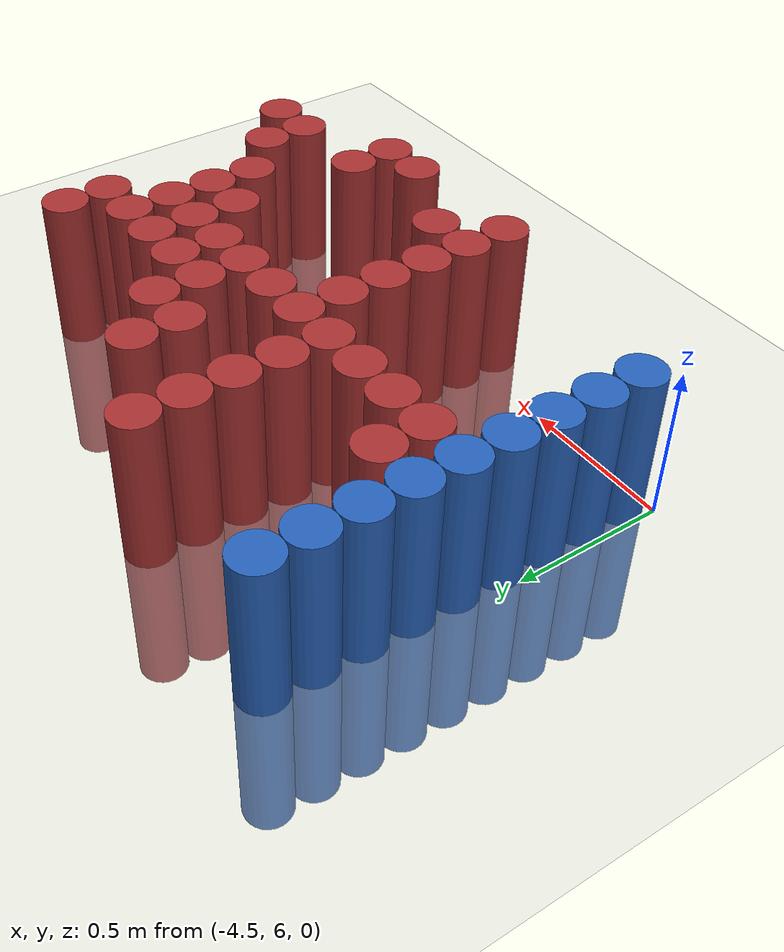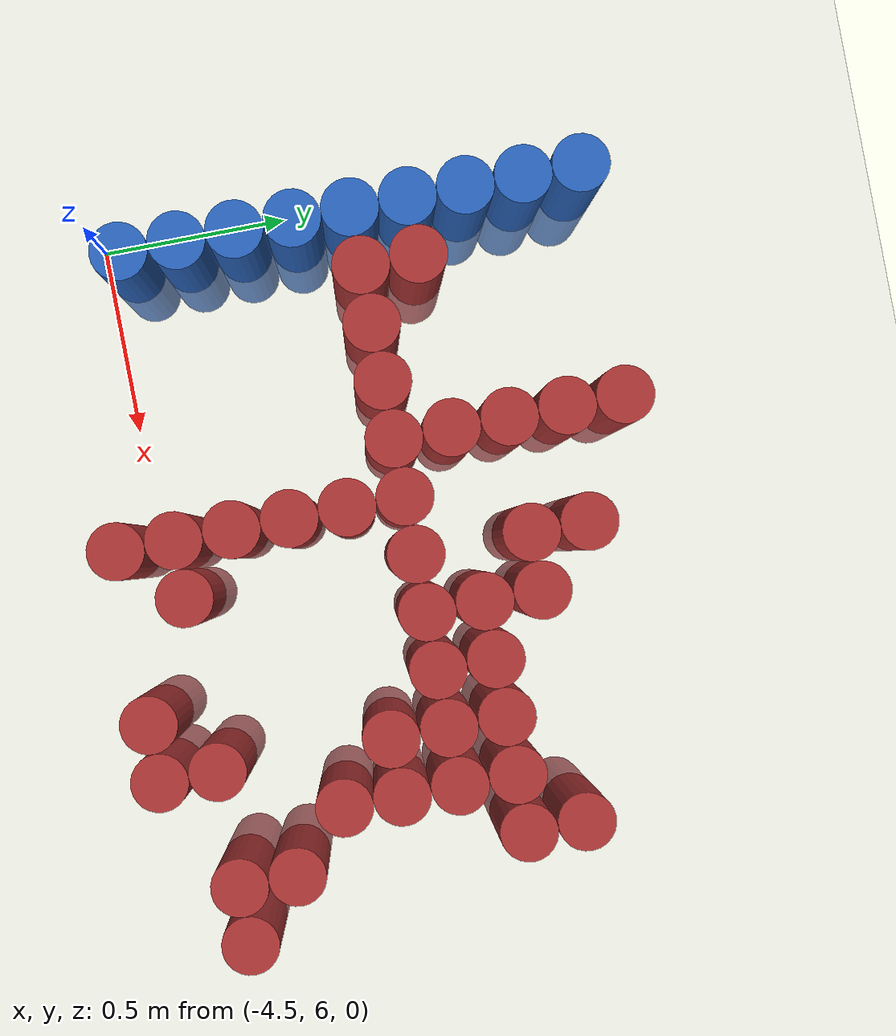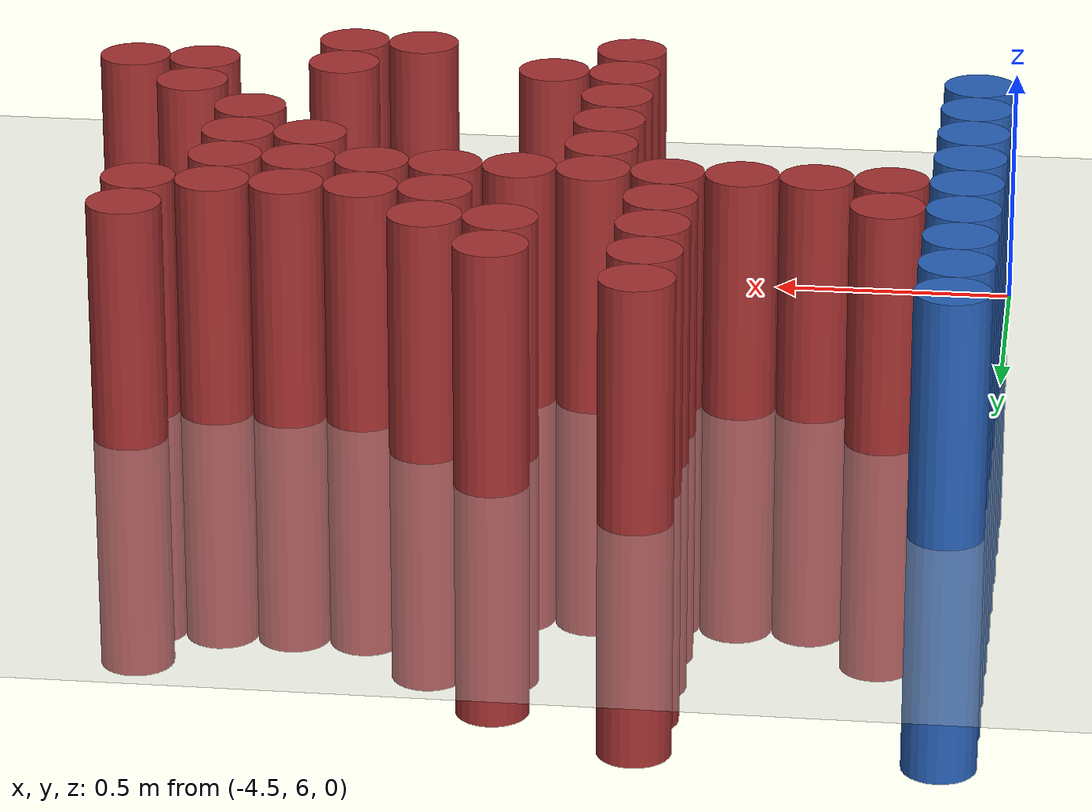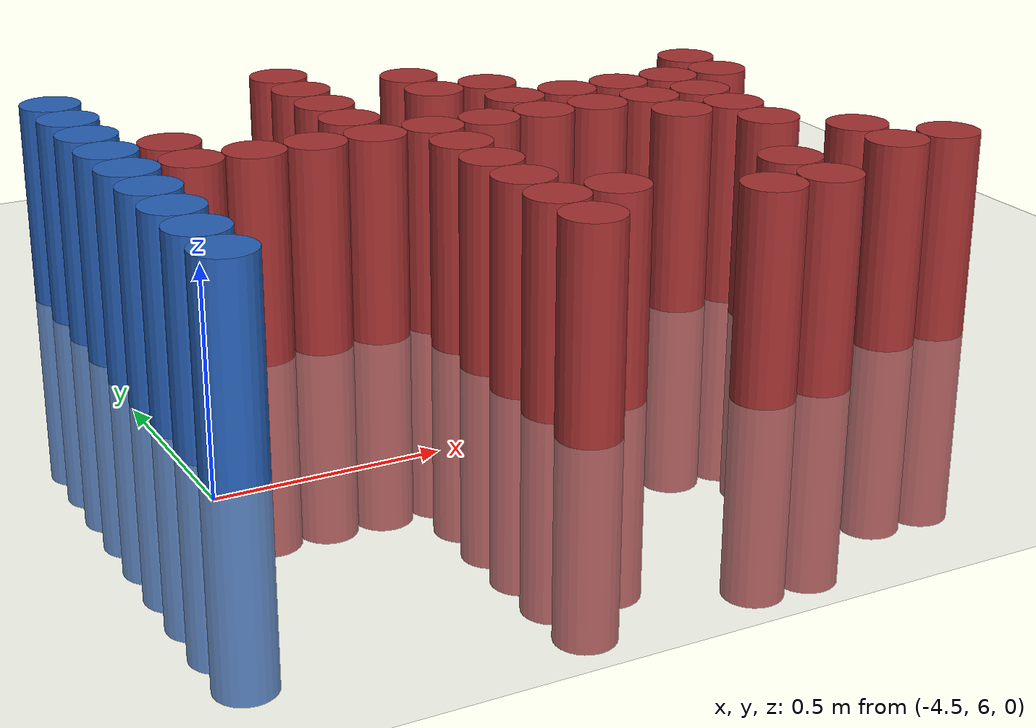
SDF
<sdf version="1.6">
 <world name="default">
  <model name="ground_plane">
   <static>1</static>
   <link name="link">
    <collision name="collision">
     <geometry><plane><normal>0 0 1</normal><size>100 100</size></plane></geometry>
     <surface><friction><ode><mu>100</mu><mu2>50</mu2></ode></friction></surface>
    </collision>
    <visual name="visual">
     <cast_shadows>0</cast_shadows>
     <geometry><plane><normal>0 0 1</normal><size>100 100</size></plane></geometry>
     <material>
      <script><uri>file://media/materials/scripts/gazebo.material</uri><name>Gazebo/Grey</name></script>
     </material>
    </visual>
   </link>
  </model>
  <model name="unit_cylinder_102">
   <static>1</static>
   <pose>-4.425000 6.075000 0.000000 0.000000 0.000000 0.000000</pose>
   <link name="link">
    <inertial>
     <mass>1</mass>
     <inertia><ixx>0.145833</ixx><ixy>0</ixy><ixz>0</ixz><iyy>0.145833</iyy><iyz>0</iyz><izz>0.125</izz></inertia>
    </inertial>
    <collision name="collision">
     <geometry><cylinder><radius>0.075000</radius><length>1</length></cylinder></geometry>
    </collision>
    <visual name="visual">
     <geometry><cylinder><radius>0.075000</radius><length>1</length></cylinder></geometry>
     <material>
      <ambient>0.152000 0.379000 0.720000 1</ambient>
      <diffuse>0.152000 0.379000 0.720000 1</diffuse>
     </material>
     <material>
      <script><name>Gazebo/Grey</name><uri>file://media/materials/scripts/gazebo.material</uri></script>
     </material>
    </visual>
   </link>
  </model>
  <model name="unit_cylinder_103">
   <static>1</static>
   <pose>-4.425000 6.225000 0.000000 0.000000 0.000000 0.000000</pose>
   <link name="link">
    <inertial>
     <mass>1</mass>
     <inertia><ixx>0.145833</ixx><ixy>0</ixy><ixz>0</ixz><iyy>0.145833</iyy><iyz>0</iyz><izz>0.125</izz></inertia>
    </inertial>
    <collision name="collision">
     <geometry><cylinder><radius>0.075000</radius><length>1</length></cylinder></geometry>
    </collision>
    <visual name="visual">
     <geometry><cylinder><radius>0.075000</radius><length>1</length></cylinder></geometry>
     <material>
      <ambient>0.152000 0.379000 0.720000 1</ambient>
      <diffuse>0.152000 0.379000 0.720000 1</diffuse>
     </material>
     <material>
      <script><name>Gazebo/Grey</name><uri>file://media/materials/scripts/gazebo.material</uri></script>
     </material>
    </visual>
   </link>
  </model>
  <model name="unit_cylinder_104">
   <static>1</static>
   <pose>-4.425000 6.375000 0.000000 0.000000 0.000000 0.000000</pose>
   <link name="link">
    <inertial>
     <mass>1</mass>
     <inertia><ixx>0.145833</ixx><ixy>0</ixy><ixz>0</ixz><iyy>0.145833</iyy><iyz>0</iyz><izz>0.125</izz></inertia>
    </inertial>
    <collision name="collision">
     <geometry><cylinder><radius>0.075000</radius><length>1</length></cylinder></geometry>
    </collision>
    <visual name="visual">
     <geometry><cylinder><radius>0.075000</radius><length>1</length></cylinder></geometry>
     <material>
      <ambient>0.152000 0.379000 0.720000 1</ambient>
      <diffuse>0.152000 0.379000 0.720000 1</diffuse>
     </material>
     <material>
      <script><name>Gazebo/Grey</name><uri>file://media/materials/scripts/gazebo.material</uri></script>
     </material>
    </visual>
   </link>
  </model>
  <model name="unit_cylinder_105">
   <static>1</static>
   <pose>-4.425000 6.525000 0.000000 0.000000 0.000000 0.000000</pose>
   <link name="link">
    <inertial>
     <mass>1</mass>
     <inertia><ixx>0.145833</ixx><ixy>0</ixy><ixz>0</ixz><iyy>0.145833</iyy><iyz>0</iyz><izz>0.125</izz></inertia>
    </inertial>
    <collision name="collision">
     <geometry><cylinder><radius>0.075000</radius><length>1</length></cylinder></geometry>
    </collision>
    <visual name="visual">
     <geometry><cylinder><radius>0.075000</radius><length>1</length></cylinder></geometry>
     <material>
      <ambient>0.152000 0.379000 0.720000 1</ambient>
      <diffuse>0.152000 0.379000 0.720000 1</diffuse>
     </material>
     <material>
      <script><name>Gazebo/Grey</name><uri>file://media/materials/scripts/gazebo.material</uri></script>
     </material>
    </visual>
   </link>
  </model>
  <model name="unit_cylinder_106">
   <static>1</static>
   <pose>-4.425000 6.675000 0.000000 0.000000 0.000000 0.000000</pose>
   <link name="link">
    <inertial>
     <mass>1</mass>
     <inertia><ixx>0.145833</ixx><ixy>0</ixy><ixz>0</ixz><iyy>0.145833</iyy><iyz>0</iyz><izz>0.125</izz></inertia>
    </inertial>
    <collision name="collision">
     <geometry><cylinder><radius>0.075000</radius><length>1</length></cylinder></geometry>
    </collision>
    <visual name="visual">
     <geometry><cylinder><radius>0.075000</radius><length>1</length></cylinder></geometry>
     <material>
      <ambient>0.152000 0.379000 0.720000 1</ambient>
      <diffuse>0.152000 0.379000 0.720000 1</diffuse>
     </material>
     <material>
      <script><name>Gazebo/Grey</name><uri>file://media/materials/scripts/gazebo.material</uri></script>
     </material>
    </visual>
   </link>
  </model>
  <model name="unit_cylinder_107">
   <static>1</static>
   <pose>-4.425000 6.825000 0.000000 0.000000 0.000000 0.000000</pose>
   <link name="link">
    <inertial>
     <mass>1</mass>
     <inertia><ixx>0.145833</ixx><ixy>0</ixy><ixz>0</ixz><iyy>0.145833</iyy><iyz>0</iyz><izz>0.125</izz></inertia>
    </inertial>
    <collision name="collision">
     <geometry><cylinder><radius>0.075000</radius><length>1</length></cylinder></geometry>
    </collision>
    <visual name="visual">
     <geometry><cylinder><radius>0.075000</radius><length>1</length></cylinder></geometry>
     <material>
      <ambient>0.152000 0.379000 0.720000 1</ambient>
      <diffuse>0.152000 0.379000 0.720000 1</diffuse>
     </material>
     <material>
      <script><name>Gazebo/Grey</name><uri>file://media/materials/scripts/gazebo.material</uri></script>
     </material>
    </visual>
   </link>
  </model>
  <model name="unit_cylinder_108">
   <static>1</static>
   <pose>-4.425000 6.975000 0.000000 0.000000 0.000000 0.000000</pose>
   <link name="link">
    <inertial>
     <mass>1</mass>
     <inertia><ixx>0.145833</ixx><ixy>0</ixy><ixz>0</ixz><iyy>0.145833</iyy><iyz>0</iyz><izz>0.125</izz></inertia>
    </inertial>
    <collision name="collision">
     <geometry><cylinder><radius>0.075000</radius><length>1</length></cylinder></geometry>
    </collision>
    <visual name="visual">
     <geometry><cylinder><radius>0.075000</radius><length>1</length></cylinder></geometry>
     <material>
      <ambient>0.152000 0.379000 0.720000 1</ambient>
      <diffuse>0.152000 0.379000 0.720000 1</diffuse>
     </material>
     <material>
      <script><name>Gazebo/Grey</name><uri>file://media/materials/scripts/gazebo.material</uri></script>
     </material>
    </visual>
   </link>
  </model>
  <model name="unit_cylinder_109">
   <static>1</static>
   <pose>-4.425000 7.125000 0.000000 0.000000 0.000000 0.000000</pose>
   <link name="link">
    <inertial>
     <mass>1</mass>
     <inertia><ixx>0.145833</ixx><ixy>0</ixy><ixz>0</ixz><iyy>0.145833</iyy><iyz>0</iyz><izz>0.125</izz></inertia>
    </inertial>
    <collision name="collision">
     <geometry><cylinder><radius>0.075000</radius><length>1</length></cylinder></geometry>
    </collision>
    <visual name="visual">
     <geometry><cylinder><radius>0.075000</radius><length>1</length></cylinder></geometry>
     <material>
      <ambient>0.152000 0.379000 0.720000 1</ambient>
      <diffuse>0.152000 0.379000 0.720000 1</diffuse>
     </material>
     <material>
      <script><name>Gazebo/Grey</name><uri>file://media/materials/scripts/gazebo.material</uri></script>
     </material>
    </visual>
   </link>
  </model>
  <model name="unit_cylinder_110">
   <static>1</static>
   <pose>-4.425000 7.275000 0.000000 0.000000 0.000000 0.000000</pose>
   <link name="link">
    <inertial>
     <mass>1</mass>
     <inertia><ixx>0.145833</ixx><ixy>0</ixy><ixz>0</ixz><iyy>0.145833</iyy><iyz>0</iyz><izz>0.125</izz></inertia>
    </inertial>
    <collision name="collision">
     <geometry><cylinder><radius>0.075000</radius><length>1</length></cylinder></geometry>
    </collision>
    <visual name="visual">
     <geometry><cylinder><radius>0.075000</radius><length>1</length></cylinder></geometry>
     <material>
      <ambient>0.152000 0.379000 0.720000 1</ambient>
      <diffuse>0.152000 0.379000 0.720000 1</diffuse>
     </material>
     <material>
      <script><name>Gazebo/Grey</name><uri>file://media/materials/scripts/gazebo.material</uri></script>
     </material>
    </visual>
   </link>
  </model>
  <model name="unit_cylinder_131">
   <static>1</static>
   <pose>-4.275000 6.675000 0.000000 0.000000 0.000000 0.000000</pose>
   <link name="link">
    <inertial>
     <mass>1</mass>
     <inertia><ixx>0.145833</ixx><ixy>0</ixy><ixz>0</ixz><iyy>0.145833</iyy><iyz>0</iyz><izz>0.125</izz></inertia>
    </inertial>
    <collision name="collision">
     <geometry><cylinder><radius>0.075000</radius><length>1</length></cylinder></geometry>
    </collision>
    <visual name="visual">
     <geometry><cylinder><radius>0.075000</radius><length>1</length></cylinder></geometry>
     <material>
      <ambient>0.648000 0.192000 0.192000 1</ambient>
      <diffuse>0.648000 0.192000 0.192000 1</diffuse>
     </material>
     <material>
      <script><name>Gazebo/Grey</name><uri>file://media/materials/scripts/gazebo.material</uri></script>
     </material>
    </visual>
   </link>
  </model>
  <model name="unit_cylinder_132">
   <static>1</static>
   <pose>-4.275000 6.825000 0.000000 0.000000 0.000000 0.000000</pose>
   <link name="link">
    <inertial>
     <mass>1</mass>
     <inertia><ixx>0.145833</ixx><ixy>0</ixy><ixz>0</ixz><iyy>0.145833</iyy><iyz>0</iyz><izz>0.125</izz></inertia>
    </inertial>
    <collision name="collision">
     <geometry><cylinder><radius>0.075000</radius><length>1</length></cylinder></geometry>
    </collision>
    <visual name="visual">
     <geometry><cylinder><radius>0.075000</radius><length>1</length></cylinder></geometry>
     <material>
      <ambient>0.648000 0.192000 0.192000 1</ambient>
      <diffuse>0.648000 0.192000 0.192000 1</diffuse>
     </material>
     <material>
      <script><name>Gazebo/Grey</name><uri>file://media/materials/scripts/gazebo.material</uri></script>
     </material>
    </visual>
   </link>
  </model>
  <model name="unit_cylinder_144">
   <static>1</static>
   <pose>-4.125000 6.675000 0.000000 0.000000 0.000000 0.000000</pose>
   <link name="link">
    <inertial>
     <mass>1</mass>
     <inertia><ixx>0.145833</ixx><ixy>0</ixy><ixz>0</ixz><iyy>0.145833</iyy><iyz>0</iyz><izz>0.125</izz></inertia>
    </inertial>
    <collision name="collision">
     <geometry><cylinder><radius>0.075000</radius><length>1</length></cylinder></geometry>
    </collision>
    <visual name="visual">
     <geometry><cylinder><radius>0.075000</radius><length>1</length></cylinder></geometry>
     <material>
      <ambient>0.648000 0.192000 0.192000 1</ambient>
      <diffuse>0.648000 0.192000 0.192000 1</diffuse>
     </material>
     <material>
      <script><name>Gazebo/Grey</name><uri>file://media/materials/scripts/gazebo.material</uri></script>
     </material>
    </visual>
   </link>
  </model>
  <model name="unit_cylinder_151">
   <static>1</static>
   <pose>-3.975000 6.675000 0.000000 0.000000 0.000000 0.000000</pose>
   <link name="link">
    <inertial>
     <mass>1</mass>
     <inertia><ixx>0.145833</ixx><ixy>0</ixy><ixz>0</ixz><iyy>0.145833</iyy><iyz>0</iyz><izz>0.125</izz></inertia>
    </inertial>
    <collision name="collision">
     <geometry><cylinder><radius>0.075000</radius><length>1</length></cylinder></geometry>
    </collision>
    <visual name="visual">
     <geometry><cylinder><radius>0.075000</radius><length>1</length></cylinder></geometry>
     <material>
      <ambient>0.648000 0.192000 0.192000 1</ambient>
      <diffuse>0.648000 0.192000 0.192000 1</diffuse>
     </material>
     <material>
      <script><name>Gazebo/Grey</name><uri>file://media/materials/scripts/gazebo.material</uri></script>
     </material>
    </visual>
   </link>
  </model>
  <model name="unit_cylinder_160">
   <static>1</static>
   <pose>-3.825000 6.675000 0.000000 0.000000 0.000000 0.000000</pose>
   <link name="link">
    <inertial>
     <mass>1</mass>
     <inertia><ixx>0.145833</ixx><ixy>0</ixy><ixz>0</ixz><iyy>0.145833</iyy><iyz>0</iyz><izz>0.125</izz></inertia>
    </inertial>
    <collision name="collision">
     <geometry><cylinder><radius>0.075000</radius><length>1</length></cylinder></geometry>
    </collision>
    <visual name="visual">
     <geometry><cylinder><radius>0.075000</radius><length>1</length></cylinder></geometry>
     <material>
      <ambient>0.648000 0.192000 0.192000 1</ambient>
      <diffuse>0.648000 0.192000 0.192000 1</diffuse>
     </material>
     <material>
      <script><name>Gazebo/Grey</name><uri>file://media/materials/scripts/gazebo.material</uri></script>
     </material>
    </visual>
   </link>
  </model>
  <model name="unit_cylinder_161">
   <static>1</static>
   <pose>-3.825000 6.825000 0.000000 0.000000 0.000000 0.000000</pose>
   <link name="link">
    <inertial>
     <mass>1</mass>
     <inertia><ixx>0.145833</ixx><ixy>0</ixy><ixz>0</ixz><iyy>0.145833</iyy><iyz>0</iyz><izz>0.125</izz></inertia>
    </inertial>
    <collision name="collision">
     <geometry><cylinder><radius>0.075000</radius><length>1</length></cylinder></geometry>
    </collision>
    <visual name="visual">
     <geometry><cylinder><radius>0.075000</radius><length>1</length></cylinder></geometry>
     <material>
      <ambient>0.648000 0.192000 0.192000 1</ambient>
      <diffuse>0.648000 0.192000 0.192000 1</diffuse>
     </material>
     <material>
      <script><name>Gazebo/Grey</name><uri>file://media/materials/scripts/gazebo.material</uri></script>
     </material>
    </visual>
   </link>
  </model>
  <model name="unit_cylinder_162">
   <static>1</static>
   <pose>-3.825000 6.975000 0.000000 0.000000 0.000000 0.000000</pose>
   <link name="link">
    <inertial>
     <mass>1</mass>
     <inertia><ixx>0.145833</ixx><ixy>0</ixy><ixz>0</ixz><iyy>0.145833</iyy><iyz>0</iyz><izz>0.125</izz></inertia>
    </inertial>
    <collision name="collision">
     <geometry><cylinder><radius>0.075000</radius><length>1</length></cylinder></geometry>
    </collision>
    <visual name="visual">
     <geometry><cylinder><radius>0.075000</radius><length>1</length></cylinder></geometry>
     <material>
      <ambient>0.648000 0.192000 0.192000 1</ambient>
      <diffuse>0.648000 0.192000 0.192000 1</diffuse>
     </material>
     <material>
      <script><name>Gazebo/Grey</name><uri>file://media/materials/scripts/gazebo.material</uri></script>
     </material>
    </visual>
   </link>
  </model>
  <model name="unit_cylinder_163">
   <static>1</static>
   <pose>-3.825000 7.125000 0.000000 0.000000 0.000000 0.000000</pose>
   <link name="link">
    <inertial>
     <mass>1</mass>
     <inertia><ixx>0.145833</ixx><ixy>0</ixy><ixz>0</ixz><iyy>0.145833</iyy><iyz>0</iyz><izz>0.125</izz></inertia>
    </inertial>
    <collision name="collision">
     <geometry><cylinder><radius>0.075000</radius><length>1</length></cylinder></geometry>
    </collision>
    <visual name="visual">
     <geometry><cylinder><radius>0.075000</radius><length>1</length></cylinder></geometry>
     <material>
      <ambient>0.648000 0.192000 0.192000 1</ambient>
      <diffuse>0.648000 0.192000 0.192000 1</diffuse>
     </material>
     <material>
      <script><name>Gazebo/Grey</name><uri>file://media/materials/scripts/gazebo.material</uri></script>
     </material>
    </visual>
   </link>
  </model>
  <model name="unit_cylinder_164">
   <static>1</static>
   <pose>-3.825000 7.275000 0.000000 0.000000 0.000000 0.000000</pose>
   <link name="link">
    <inertial>
     <mass>1</mass>
     <inertia><ixx>0.145833</ixx><ixy>0</ixy><ixz>0</ixz><iyy>0.145833</iyy><iyz>0</iyz><izz>0.125</izz></inertia>
    </inertial>
    <collision name="collision">
     <geometry><cylinder><radius>0.075000</radius><length>1</length></cylinder></geometry>
    </collision>
    <visual name="visual">
     <geometry><cylinder><radius>0.075000</radius><length>1</length></cylinder></geometry>
     <material>
      <ambient>0.648000 0.192000 0.192000 1</ambient>
      <diffuse>0.648000 0.192000 0.192000 1</diffuse>
     </material>
     <material>
      <script><name>Gazebo/Grey</name><uri>file://media/materials/scripts/gazebo.material</uri></script>
     </material>
    </visual>
   </link>
  </model>
  <model name="unit_cylinder_169">
   <static>1</static>
   <pose>-3.675000 5.925000 0.000000 0.000000 0.000000 0.000000</pose>
   <link name="link">
    <inertial>
     <mass>1</mass>
     <inertia><ixx>0.145833</ixx><ixy>0</ixy><ixz>0</ixz><iyy>0.145833</iyy><iyz>0</iyz><izz>0.125</izz></inertia>
    </inertial>
    <collision name="collision">
     <geometry><cylinder><radius>0.075000</radius><length>1</length></cylinder></geometry>
    </collision>
    <visual name="visual">
     <geometry><cylinder><radius>0.075000</radius><length>1</length></cylinder></geometry>
     <material>
      <ambient>0.648000 0.192000 0.192000 1</ambient>
      <diffuse>0.648000 0.192000 0.192000 1</diffuse>
     </material>
     <material>
      <script><name>Gazebo/Grey</name><uri>file://media/materials/scripts/gazebo.material</uri></script>
     </material>
    </visual>
   </link>
  </model>
  <model name="unit_cylinder_170">
   <static>1</static>
   <pose>-3.675000 6.075000 0.000000 0.000000 0.000000 0.000000</pose>
   <link name="link">
    <inertial>
     <mass>1</mass>
     <inertia><ixx>0.145833</ixx><ixy>0</ixy><ixz>0</ixz><iyy>0.145833</iyy><iyz>0</iyz><izz>0.125</izz></inertia>
    </inertial>
    <collision name="collision">
     <geometry><cylinder><radius>0.075000</radius><length>1</length></cylinder></geometry>
    </collision>
    <visual name="visual">
     <geometry><cylinder><radius>0.075000</radius><length>1</length></cylinder></geometry>
     <material>
      <ambient>0.648000 0.192000 0.192000 1</ambient>
      <diffuse>0.648000 0.192000 0.192000 1</diffuse>
     </material>
     <material>
      <script><name>Gazebo/Grey</name><uri>file://media/materials/scripts/gazebo.material</uri></script>
     </material>
    </visual>
   </link>
  </model>
  <model name="unit_cylinder_171">
   <static>1</static>
   <pose>-3.675000 6.225000 0.000000 0.000000 0.000000 0.000000</pose>
   <link name="link">
    <inertial>
     <mass>1</mass>
     <inertia><ixx>0.145833</ixx><ixy>0</ixy><ixz>0</ixz><iyy>0.145833</iyy><iyz>0</iyz><izz>0.125</izz></inertia>
    </inertial>
    <collision name="collision">
     <geometry><cylinder><radius>0.075000</radius><length>1</length></cylinder></geometry>
    </collision>
    <visual name="visual">
     <geometry><cylinder><radius>0.075000</radius><length>1</length></cylinder></geometry>
     <material>
      <ambient>0.648000 0.192000 0.192000 1</ambient>
      <diffuse>0.648000 0.192000 0.192000 1</diffuse>
     </material>
     <material>
      <script><name>Gazebo/Grey</name><uri>file://media/materials/scripts/gazebo.material</uri></script>
     </material>
    </visual>
   </link>
  </model>
  <model name="unit_cylinder_172">
   <static>1</static>
   <pose>-3.675000 6.375000 0.000000 0.000000 0.000000 0.000000</pose>
   <link name="link">
    <inertial>
     <mass>1</mass>
     <inertia><ixx>0.145833</ixx><ixy>0</ixy><ixz>0</ixz><iyy>0.145833</iyy><iyz>0</iyz><izz>0.125</izz></inertia>
    </inertial>
    <collision name="collision">
     <geometry><cylinder><radius>0.075000</radius><length>1</length></cylinder></geometry>
    </collision>
    <visual name="visual">
     <geometry><cylinder><radius>0.075000</radius><length>1</length></cylinder></geometry>
     <material>
      <ambient>0.648000 0.192000 0.192000 1</ambient>
      <diffuse>0.648000 0.192000 0.192000 1</diffuse>
     </material>
     <material>
      <script><name>Gazebo/Grey</name><uri>file://media/materials/scripts/gazebo.material</uri></script>
     </material>
    </visual>
   </link>
  </model>
  <model name="unit_cylinder_173">
   <static>1</static>
   <pose>-3.675000 6.525000 0.000000 0.000000 0.000000 0.000000</pose>
   <link name="link">
    <inertial>
     <mass>1</mass>
     <inertia><ixx>0.145833</ixx><ixy>0</ixy><ixz>0</ixz><iyy>0.145833</iyy><iyz>0</iyz><izz>0.125</izz></inertia>
    </inertial>
    <collision name="collision">
     <geometry><cylinder><radius>0.075000</radius><length>1</length></cylinder></geometry>
    </collision>
    <visual name="visual">
     <geometry><cylinder><radius>0.075000</radius><length>1</length></cylinder></geometry>
     <material>
      <ambient>0.648000 0.192000 0.192000 1</ambient>
      <diffuse>0.648000 0.192000 0.192000 1</diffuse>
     </material>
     <material>
      <script><name>Gazebo/Grey</name><uri>file://media/materials/scripts/gazebo.material</uri></script>
     </material>
    </visual>
   </link>
  </model>
  <model name="unit_cylinder_174">
   <static>1</static>
   <pose>-3.675000 6.675000 0.000000 0.000000 0.000000 0.000000</pose>
   <link name="link">
    <inertial>
     <mass>1</mass>
     <inertia><ixx>0.145833</ixx><ixy>0</ixy><ixz>0</ixz><iyy>0.145833</iyy><iyz>0</iyz><izz>0.125</izz></inertia>
    </inertial>
    <collision name="collision">
     <geometry><cylinder><radius>0.075000</radius><length>1</length></cylinder></geometry>
    </collision>
    <visual name="visual">
     <geometry><cylinder><radius>0.075000</radius><length>1</length></cylinder></geometry>
     <material>
      <ambient>0.648000 0.192000 0.192000 1</ambient>
      <diffuse>0.648000 0.192000 0.192000 1</diffuse>
     </material>
     <material>
      <script><name>Gazebo/Grey</name><uri>file://media/materials/scripts/gazebo.material</uri></script>
     </material>
    </visual>
   </link>
  </model>
  <model name="unit_cylinder_177">
   <static>1</static>
   <pose>-3.525000 6.075000 0.000000 0.000000 0.000000 0.000000</pose>
   <link name="link">
    <inertial>
     <mass>1</mass>
     <inertia><ixx>0.145833</ixx><ixy>0</ixy><ixz>0</ixz><iyy>0.145833</iyy><iyz>0</iyz><izz>0.125</izz></inertia>
    </inertial>
    <collision name="collision">
     <geometry><cylinder><radius>0.075000</radius><length>1</length></cylinder></geometry>
    </collision>
    <visual name="visual">
     <geometry><cylinder><radius>0.075000</radius><length>1</length></cylinder></geometry>
     <material>
      <ambient>0.648000 0.192000 0.192000 1</ambient>
      <diffuse>0.648000 0.192000 0.192000 1</diffuse>
     </material>
     <material>
      <script><name>Gazebo/Grey</name><uri>file://media/materials/scripts/gazebo.material</uri></script>
     </material>
    </visual>
   </link>
  </model>
  <model name="unit_cylinder_178">
   <static>1</static>
   <pose>-3.525000 6.675000 0.000000 0.000000 0.000000 0.000000</pose>
   <link name="link">
    <inertial>
     <mass>1</mass>
     <inertia><ixx>0.145833</ixx><ixy>0</ixy><ixz>0</ixz><iyy>0.145833</iyy><iyz>0</iyz><izz>0.125</izz></inertia>
    </inertial>
    <collision name="collision">
     <geometry><cylinder><radius>0.075000</radius><length>1</length></cylinder></geometry>
    </collision>
    <visual name="visual">
     <geometry><cylinder><radius>0.075000</radius><length>1</length></cylinder></geometry>
     <material>
      <ambient>0.648000 0.192000 0.192000 1</ambient>
      <diffuse>0.648000 0.192000 0.192000 1</diffuse>
     </material>
     <material>
      <script><name>Gazebo/Grey</name><uri>file://media/materials/scripts/gazebo.material</uri></script>
     </material>
    </visual>
   </link>
  </model>
  <model name="unit_cylinder_179">
   <static>1</static>
   <pose>-3.525000 6.975000 0.000000 0.000000 0.000000 0.000000</pose>
   <link name="link">
    <inertial>
     <mass>1</mass>
     <inertia><ixx>0.145833</ixx><ixy>0</ixy><ixz>0</ixz><iyy>0.145833</iyy><iyz>0</iyz><izz>0.125</izz></inertia>
    </inertial>
    <collision name="collision">
     <geometry><cylinder><radius>0.075000</radius><length>1</length></cylinder></geometry>
    </collision>
    <visual name="visual">
     <geometry><cylinder><radius>0.075000</radius><length>1</length></cylinder></geometry>
     <material>
      <ambient>0.648000 0.192000 0.192000 1</ambient>
      <diffuse>0.648000 0.192000 0.192000 1</diffuse>
     </material>
     <material>
      <script><name>Gazebo/Grey</name><uri>file://media/materials/scripts/gazebo.material</uri></script>
     </material>
    </visual>
   </link>
  </model>
  <model name="unit_cylinder_180">
   <static>1</static>
   <pose>-3.525000 7.125000 0.000000 0.000000 0.000000 0.000000</pose>
   <link name="link">
    <inertial>
     <mass>1</mass>
     <inertia><ixx>0.145833</ixx><ixy>0</ixy><ixz>0</ixz><iyy>0.145833</iyy><iyz>0</iyz><izz>0.125</izz></inertia>
    </inertial>
    <collision name="collision">
     <geometry><cylinder><radius>0.075000</radius><length>1</length></cylinder></geometry>
    </collision>
    <visual name="visual">
     <geometry><cylinder><radius>0.075000</radius><length>1</length></cylinder></geometry>
     <material>
      <ambient>0.648000 0.192000 0.192000 1</ambient>
      <diffuse>0.648000 0.192000 0.192000 1</diffuse>
     </material>
     <material>
      <script><name>Gazebo/Grey</name><uri>file://media/materials/scripts/gazebo.material</uri></script>
     </material>
    </visual>
   </link>
  </model>
  <model name="unit_cylinder_183">
   <static>1</static>
   <pose>-3.375000 6.675000 0.000000 0.000000 0.000000 0.000000</pose>
   <link name="link">
    <inertial>
     <mass>1</mass>
     <inertia><ixx>0.145833</ixx><ixy>0</ixy><ixz>0</ixz><iyy>0.145833</iyy><iyz>0</iyz><izz>0.125</izz></inertia>
    </inertial>
    <collision name="collision">
     <geometry><cylinder><radius>0.075000</radius><length>1</length></cylinder></geometry>
    </collision>
    <visual name="visual">
     <geometry><cylinder><radius>0.075000</radius><length>1</length></cylinder></geometry>
     <material>
      <ambient>0.648000 0.192000 0.192000 1</ambient>
      <diffuse>0.648000 0.192000 0.192000 1</diffuse>
     </material>
     <material>
      <script><name>Gazebo/Grey</name><uri>file://media/materials/scripts/gazebo.material</uri></script>
     </material>
    </visual>
   </link>
  </model>
  <model name="unit_cylinder_184">
   <static>1</static>
   <pose>-3.375000 6.825000 0.000000 0.000000 0.000000 0.000000</pose>
   <link name="link">
    <inertial>
     <mass>1</mass>
     <inertia><ixx>0.145833</ixx><ixy>0</ixy><ixz>0</ixz><iyy>0.145833</iyy><iyz>0</iyz><izz>0.125</izz></inertia>
    </inertial>
    <collision name="collision">
     <geometry><cylinder><radius>0.075000</radius><length>1</length></cylinder></geometry>
    </collision>
    <visual name="visual">
     <geometry><cylinder><radius>0.075000</radius><length>1</length></cylinder></geometry>
     <material>
      <ambient>0.648000 0.192000 0.192000 1</ambient>
      <diffuse>0.648000 0.192000 0.192000 1</diffuse>
     </material>
     <material>
      <script><name>Gazebo/Grey</name><uri>file://media/materials/scripts/gazebo.material</uri></script>
     </material>
    </visual>
   </link>
  </model>
  <model name="unit_cylinder_185">
   <static>1</static>
   <pose>-3.375000 6.975000 0.000000 0.000000 0.000000 0.000000</pose>
   <link name="link">
    <inertial>
     <mass>1</mass>
     <inertia><ixx>0.145833</ixx><ixy>0</ixy><ixz>0</ixz><iyy>0.145833</iyy><iyz>0</iyz><izz>0.125</izz></inertia>
    </inertial>
    <collision name="collision">
     <geometry><cylinder><radius>0.075000</radius><length>1</length></cylinder></geometry>
    </collision>
    <visual name="visual">
     <geometry><cylinder><radius>0.075000</radius><length>1</length></cylinder></geometry>
     <material>
      <ambient>0.648000 0.192000 0.192000 1</ambient>
      <diffuse>0.648000 0.192000 0.192000 1</diffuse>
     </material>
     <material>
      <script><name>Gazebo/Grey</name><uri>file://media/materials/scripts/gazebo.material</uri></script>
     </material>
    </visual>
   </link>
  </model>
  <model name="unit_cylinder_190">
   <static>1</static>
   <pose>-3.225000 5.925000 0.000000 0.000000 0.000000 0.000000</pose>
   <link name="link">
    <inertial>
     <mass>1</mass>
     <inertia><ixx>0.145833</ixx><ixy>0</ixy><ixz>0</ixz><iyy>0.145833</iyy><iyz>0</iyz><izz>0.125</izz></inertia>
    </inertial>
    <collision name="collision">
     <geometry><cylinder><radius>0.075000</radius><length>1</length></cylinder></geometry>
    </collision>
    <visual name="visual">
     <geometry><cylinder><radius>0.075000</radius><length>1</length></cylinder></geometry>
     <material>
      <ambient>0.648000 0.192000 0.192000 1</ambient>
      <diffuse>0.648000 0.192000 0.192000 1</diffuse>
     </material>
     <material>
      <script><name>Gazebo/Grey</name><uri>file://media/materials/scripts/gazebo.material</uri></script>
     </material>
    </visual>
   </link>
  </model>
  <model name="unit_cylinder_191">
   <static>1</static>
   <pose>-3.225000 6.675000 0.000000 0.000000 0.000000 0.000000</pose>
   <link name="link">
    <inertial>
     <mass>1</mass>
     <inertia><ixx>0.145833</ixx><ixy>0</ixy><ixz>0</ixz><iyy>0.145833</iyy><iyz>0</iyz><izz>0.125</izz></inertia>
    </inertial>
    <collision name="collision">
     <geometry><cylinder><radius>0.075000</radius><length>1</length></cylinder></geometry>
    </collision>
    <visual name="visual">
     <geometry><cylinder><radius>0.075000</radius><length>1</length></cylinder></geometry>
     <material>
      <ambient>0.648000 0.192000 0.192000 1</ambient>
      <diffuse>0.648000 0.192000 0.192000 1</diffuse>
     </material>
     <material>
      <script><name>Gazebo/Grey</name><uri>file://media/materials/scripts/gazebo.material</uri></script>
     </material>
    </visual>
   </link>
  </model>
  <model name="unit_cylinder_192">
   <static>1</static>
   <pose>-3.225000 6.825000 0.000000 0.000000 0.000000 0.000000</pose>
   <link name="link">
    <inertial>
     <mass>1</mass>
     <inertia><ixx>0.145833</ixx><ixy>0</ixy><ixz>0</ixz><iyy>0.145833</iyy><iyz>0</iyz><izz>0.125</izz></inertia>
    </inertial>
    <collision name="collision">
     <geometry><cylinder><radius>0.075000</radius><length>1</length></cylinder></geometry>
    </collision>
    <visual name="visual">
     <geometry><cylinder><radius>0.075000</radius><length>1</length></cylinder></geometry>
     <material>
      <ambient>0.648000 0.192000 0.192000 1</ambient>
      <diffuse>0.648000 0.192000 0.192000 1</diffuse>
     </material>
     <material>
      <script><name>Gazebo/Grey</name><uri>file://media/materials/scripts/gazebo.material</uri></script>
     </material>
    </visual>
   </link>
  </model>
  <model name="unit_cylinder_195">
   <static>1</static>
   <pose>-3.075000 5.925000 0.000000 0.000000 0.000000 0.000000</pose>
   <link name="link">
    <inertial>
     <mass>1</mass>
     <inertia><ixx>0.145833</ixx><ixy>0</ixy><ixz>0</ixz><iyy>0.145833</iyy><iyz>0</iyz><izz>0.125</izz></inertia>
    </inertial>
    <collision name="collision">
     <geometry><cylinder><radius>0.075000</radius><length>1</length></cylinder></geometry>
    </collision>
    <visual name="visual">
     <geometry><cylinder><radius>0.075000</radius><length>1</length></cylinder></geometry>
     <material>
      <ambient>0.648000 0.192000 0.192000 1</ambient>
      <diffuse>0.648000 0.192000 0.192000 1</diffuse>
     </material>
     <material>
      <script><name>Gazebo/Grey</name><uri>file://media/materials/scripts/gazebo.material</uri></script>
     </material>
    </visual>
   </link>
  </model>
  <model name="unit_cylinder_196">
   <static>1</static>
   <pose>-3.075000 6.075000 0.000000 0.000000 0.000000 0.000000</pose>
   <link name="link">
    <inertial>
     <mass>1</mass>
     <inertia><ixx>0.145833</ixx><ixy>0</ixy><ixz>0</ixz><iyy>0.145833</iyy><iyz>0</iyz><izz>0.125</izz></inertia>
    </inertial>
    <collision name="collision">
     <geometry><cylinder><radius>0.075000</radius><length>1</length></cylinder></geometry>
    </collision>
    <visual name="visual">
     <geometry><cylinder><radius>0.075000</radius><length>1</length></cylinder></geometry>
     <material>
      <ambient>0.648000 0.192000 0.192000 1</ambient>
      <diffuse>0.648000 0.192000 0.192000 1</diffuse>
     </material>
     <material>
      <script><name>Gazebo/Grey</name><uri>file://media/materials/scripts/gazebo.material</uri></script>
     </material>
    </visual>
   </link>
  </model>
  <model name="unit_cylinder_197">
   <static>1</static>
   <pose>-3.075000 6.525000 0.000000 0.000000 0.000000 0.000000</pose>
   <link name="link">
    <inertial>
     <mass>1</mass>
     <inertia><ixx>0.145833</ixx><ixy>0</ixy><ixz>0</ixz><iyy>0.145833</iyy><iyz>0</iyz><izz>0.125</izz></inertia>
    </inertial>
    <collision name="collision">
     <geometry><cylinder><radius>0.075000</radius><length>1</length></cylinder></geometry>
    </collision>
    <visual name="visual">
     <geometry><cylinder><radius>0.075000</radius><length>1</length></cylinder></geometry>
     <material>
      <ambient>0.648000 0.192000 0.192000 1</ambient>
      <diffuse>0.648000 0.192000 0.192000 1</diffuse>
     </material>
     <material>
      <script><name>Gazebo/Grey</name><uri>file://media/materials/scripts/gazebo.material</uri></script>
     </material>
    </visual>
   </link>
  </model>
  <model name="unit_cylinder_198">
   <static>1</static>
   <pose>-3.075000 6.675000 0.000000 0.000000 0.000000 0.000000</pose>
   <link name="link">
    <inertial>
     <mass>1</mass>
     <inertia><ixx>0.145833</ixx><ixy>0</ixy><ixz>0</ixz><iyy>0.145833</iyy><iyz>0</iyz><izz>0.125</izz></inertia>
    </inertial>
    <collision name="collision">
     <geometry><cylinder><radius>0.075000</radius><length>1</length></cylinder></geometry>
    </collision>
    <visual name="visual">
     <geometry><cylinder><radius>0.075000</radius><length>1</length></cylinder></geometry>
     <material>
      <ambient>0.648000 0.192000 0.192000 1</ambient>
      <diffuse>0.648000 0.192000 0.192000 1</diffuse>
     </material>
     <material>
      <script><name>Gazebo/Grey</name><uri>file://media/materials/scripts/gazebo.material</uri></script>
     </material>
    </visual>
   </link>
  </model>
  <model name="unit_cylinder_199">
   <static>1</static>
   <pose>-3.075000 6.825000 0.000000 0.000000 0.000000 0.000000</pose>
   <link name="link">
    <inertial>
     <mass>1</mass>
     <inertia><ixx>0.145833</ixx><ixy>0</ixy><ixz>0</ixz><iyy>0.145833</iyy><iyz>0</iyz><izz>0.125</izz></inertia>
    </inertial>
    <collision name="collision">
     <geometry><cylinder><radius>0.075000</radius><length>1</length></cylinder></geometry>
    </collision>
    <visual name="visual">
     <geometry><cylinder><radius>0.075000</radius><length>1</length></cylinder></geometry>
     <material>
      <ambient>0.648000 0.192000 0.192000 1</ambient>
      <diffuse>0.648000 0.192000 0.192000 1</diffuse>
     </material>
     <material>
      <script><name>Gazebo/Grey</name><uri>file://media/materials/scripts/gazebo.material</uri></script>
     </material>
    </visual>
   </link>
  </model>
  <model name="unit_cylinder_203">
   <static>1</static>
   <pose>-2.925000 6.375000 0.000000 0.000000 0.000000 0.000000</pose>
   <link name="link">
    <inertial>
     <mass>1</mass>
     <inertia><ixx>0.145833</ixx><ixy>0</ixy><ixz>0</ixz><iyy>0.145833</iyy><iyz>0</iyz><izz>0.125</izz></inertia>
    </inertial>
    <collision name="collision">
     <geometry><cylinder><radius>0.075000</radius><length>1</length></cylinder></geometry>
    </collision>
    <visual name="visual">
     <geometry><cylinder><radius>0.075000</radius><length>1</length></cylinder></geometry>
     <material>
      <ambient>0.648000 0.192000 0.192000 1</ambient>
      <diffuse>0.648000 0.192000 0.192000 1</diffuse>
     </material>
     <material>
      <script><name>Gazebo/Grey</name><uri>file://media/materials/scripts/gazebo.material</uri></script>
     </material>
    </visual>
   </link>
  </model>
  <model name="unit_cylinder_204">
   <static>1</static>
   <pose>-2.925000 6.525000 0.000000 0.000000 0.000000 0.000000</pose>
   <link name="link">
    <inertial>
     <mass>1</mass>
     <inertia><ixx>0.145833</ixx><ixy>0</ixy><ixz>0</ixz><iyy>0.145833</iyy><iyz>0</iyz><izz>0.125</izz></inertia>
    </inertial>
    <collision name="collision">
     <geometry><cylinder><radius>0.075000</radius><length>1</length></cylinder></geometry>
    </collision>
    <visual name="visual">
     <geometry><cylinder><radius>0.075000</radius><length>1</length></cylinder></geometry>
     <material>
      <ambient>0.648000 0.192000 0.192000 1</ambient>
      <diffuse>0.648000 0.192000 0.192000 1</diffuse>
     </material>
     <material>
      <script><name>Gazebo/Grey</name><uri>file://media/materials/scripts/gazebo.material</uri></script>
     </material>
    </visual>
   </link>
  </model>
  <model name="unit_cylinder_205">
   <static>1</static>
   <pose>-2.925000 6.675000 0.000000 0.000000 0.000000 0.000000</pose>
   <link name="link">
    <inertial>
     <mass>1</mass>
     <inertia><ixx>0.145833</ixx><ixy>0</ixy><ixz>0</ixz><iyy>0.145833</iyy><iyz>0</iyz><izz>0.125</izz></inertia>
    </inertial>
    <collision name="collision">
     <geometry><cylinder><radius>0.075000</radius><length>1</length></cylinder></geometry>
    </collision>
    <visual name="visual">
     <geometry><cylinder><radius>0.075000</radius><length>1</length></cylinder></geometry>
     <material>
      <ambient>0.648000 0.192000 0.192000 1</ambient>
      <diffuse>0.648000 0.192000 0.192000 1</diffuse>
     </material>
     <material>
      <script><name>Gazebo/Grey</name><uri>file://media/materials/scripts/gazebo.material</uri></script>
     </material>
    </visual>
   </link>
  </model>
  <model name="unit_cylinder_206">
   <static>1</static>
   <pose>-2.925000 6.825000 0.000000 0.000000 0.000000 0.000000</pose>
   <link name="link">
    <inertial>
     <mass>1</mass>
     <inertia><ixx>0.145833</ixx><ixy>0</ixy><ixz>0</ixz><iyy>0.145833</iyy><iyz>0</iyz><izz>0.125</izz></inertia>
    </inertial>
    <collision name="collision">
     <geometry><cylinder><radius>0.075000</radius><length>1</length></cylinder></geometry>
    </collision>
    <visual name="visual">
     <geometry><cylinder><radius>0.075000</radius><length>1</length></cylinder></geometry>
     <material>
      <ambient>0.648000 0.192000 0.192000 1</ambient>
      <diffuse>0.648000 0.192000 0.192000 1</diffuse>
     </material>
     <material>
      <script><name>Gazebo/Grey</name><uri>file://media/materials/scripts/gazebo.material</uri></script>
     </material>
    </visual>
   </link>
  </model>
  <model name="unit_cylinder_208">
   <static>1</static>
   <pose>-2.775000 6.075000 0.000000 0.000000 0.000000 0.000000</pose>
   <link name="link">
    <inertial>
     <mass>1</mass>
     <inertia><ixx>0.145833</ixx><ixy>0</ixy><ixz>0</ixz><iyy>0.145833</iyy><iyz>0</iyz><izz>0.125</izz></inertia>
    </inertial>
    <collision name="collision">
     <geometry><cylinder><radius>0.075000</radius><length>1</length></cylinder></geometry>
    </collision>
    <visual name="visual">
     <geometry><cylinder><radius>0.075000</radius><length>1</length></cylinder></geometry>
     <material>
      <ambient>0.648000 0.192000 0.192000 1</ambient>
      <diffuse>0.648000 0.192000 0.192000 1</diffuse>
     </material>
     <material>
      <script><name>Gazebo/Grey</name><uri>file://media/materials/scripts/gazebo.material</uri></script>
     </material>
    </visual>
   </link>
  </model>
  <model name="unit_cylinder_209">
   <static>1</static>
   <pose>-2.775000 6.225000 0.000000 0.000000 0.000000 0.000000</pose>
   <link name="link">
    <inertial>
     <mass>1</mass>
     <inertia><ixx>0.145833</ixx><ixy>0</ixy><ixz>0</ixz><iyy>0.145833</iyy><iyz>0</iyz><izz>0.125</izz></inertia>
    </inertial>
    <collision name="collision">
     <geometry><cylinder><radius>0.075000</radius><length>1</length></cylinder></geometry>
    </collision>
    <visual name="visual">
     <geometry><cylinder><radius>0.075000</radius><length>1</length></cylinder></geometry>
     <material>
      <ambient>0.648000 0.192000 0.192000 1</ambient>
      <diffuse>0.648000 0.192000 0.192000 1</diffuse>
     </material>
     <material>
      <script><name>Gazebo/Grey</name><uri>file://media/materials/scripts/gazebo.material</uri></script>
     </material>
    </visual>
   </link>
  </model>
  <model name="unit_cylinder_210">
   <static>1</static>
   <pose>-2.775000 6.825000 0.000000 0.000000 0.000000 0.000000</pose>
   <link name="link">
    <inertial>
     <mass>1</mass>
     <inertia><ixx>0.145833</ixx><ixy>0</ixy><ixz>0</ixz><iyy>0.145833</iyy><iyz>0</iyz><izz>0.125</izz></inertia>
    </inertial>
    <collision name="collision">
     <geometry><cylinder><radius>0.075000</radius><length>1</length></cylinder></geometry>
    </collision>
    <visual name="visual">
     <geometry><cylinder><radius>0.075000</radius><length>1</length></cylinder></geometry>
     <material>
      <ambient>0.648000 0.192000 0.192000 1</ambient>
      <diffuse>0.648000 0.192000 0.192000 1</diffuse>
     </material>
     <material>
      <script><name>Gazebo/Grey</name><uri>file://media/materials/scripts/gazebo.material</uri></script>
     </material>
    </visual>
   </link>
  </model>
  <model name="unit_cylinder_211">
   <static>1</static>
   <pose>-2.775000 6.975000 0.000000 0.000000 0.000000 0.000000</pose>
   <link name="link">
    <inertial>
     <mass>1</mass>
     <inertia><ixx>0.145833</ixx><ixy>0</ixy><ixz>0</ixz><iyy>0.145833</iyy><iyz>0</iyz><izz>0.125</izz></inertia>
    </inertial>
    <collision name="collision">
     <geometry><cylinder><radius>0.075000</radius><length>1</length></cylinder></geometry>
    </collision>
    <visual name="visual">
     <geometry><cylinder><radius>0.075000</radius><length>1</length></cylinder></geometry>
     <material>
      <ambient>0.648000 0.192000 0.192000 1</ambient>
      <diffuse>0.648000 0.192000 0.192000 1</diffuse>
     </material>
     <material>
      <script><name>Gazebo/Grey</name><uri>file://media/materials/scripts/gazebo.material</uri></script>
     </material>
    </visual>
   </link>
  </model>
  <model name="unit_cylinder_215">
   <static>1</static>
   <pose>-2.625000 6.075000 0.000000 0.000000 0.000000 0.000000</pose>
   <link name="link">
    <inertial>
     <mass>1</mass>
     <inertia><ixx>0.145833</ixx><ixy>0</ixy><ixz>0</ixz><iyy>0.145833</iyy><iyz>0</iyz><izz>0.125</izz></inertia>
    </inertial>
    <collision name="collision">
     <geometry><cylinder><radius>0.075000</radius><length>1</length></cylinder></geometry>
    </collision>
    <visual name="visual">
     <geometry><cylinder><radius>0.075000</radius><length>1</length></cylinder></geometry>
     <material>
      <ambient>0.648000 0.192000 0.192000 1</ambient>
      <diffuse>0.648000 0.192000 0.192000 1</diffuse>
     </material>
     <material>
      <script><name>Gazebo/Grey</name><uri>file://media/materials/scripts/gazebo.material</uri></script>
     </material>
    </visual>
   </link>
  </model>
 </world>
</sdf>
